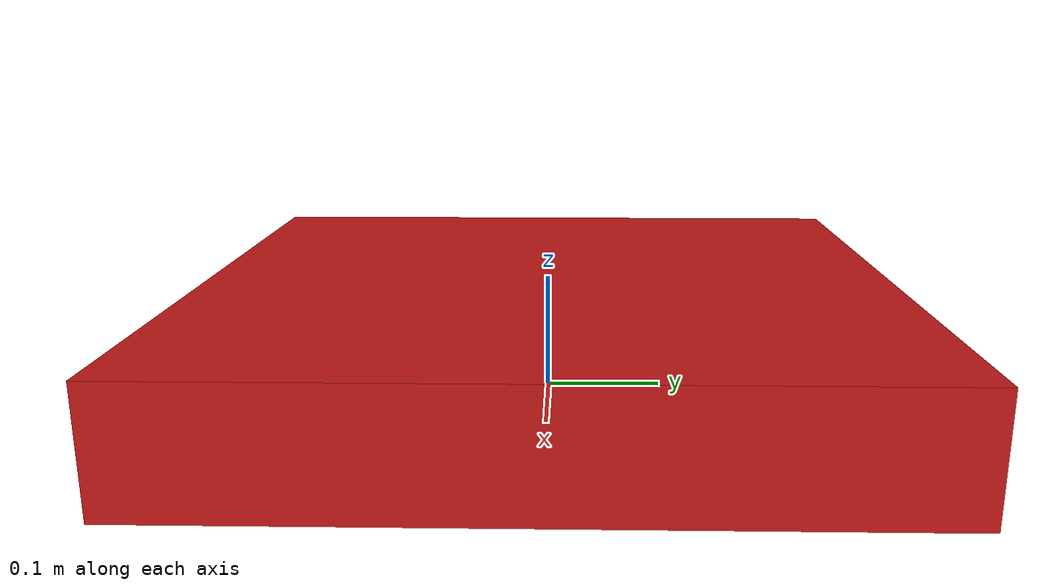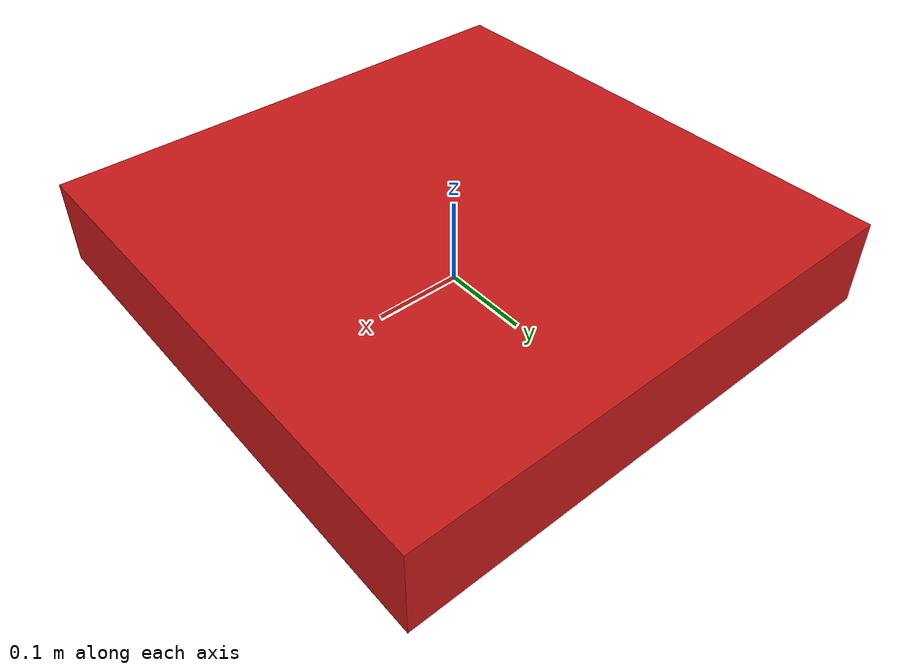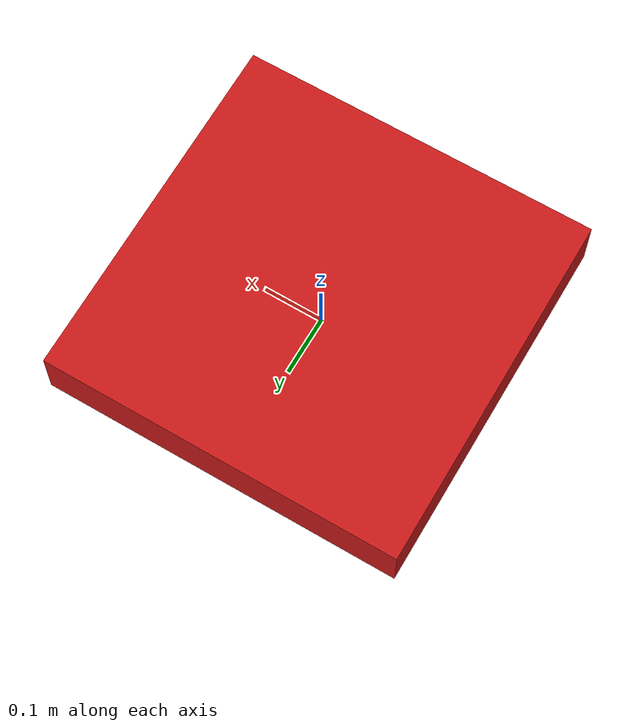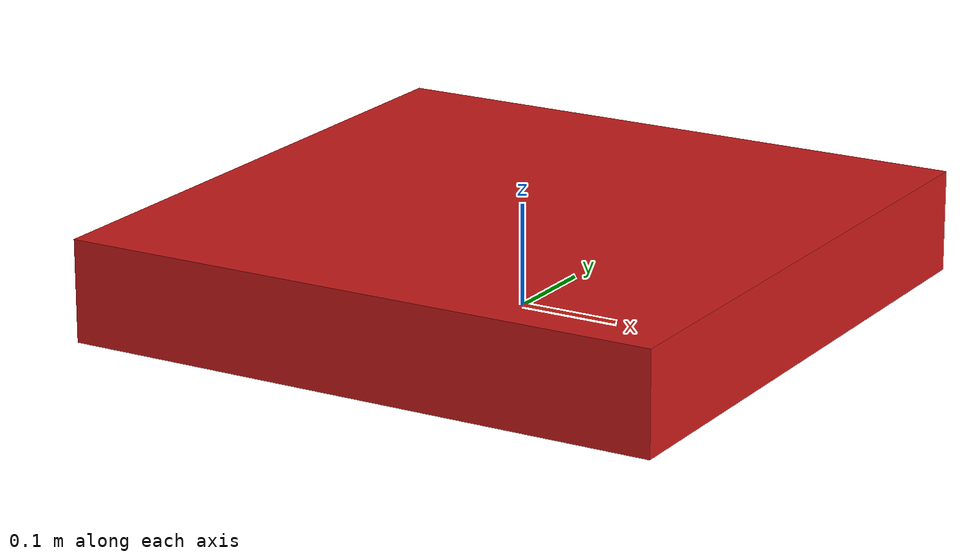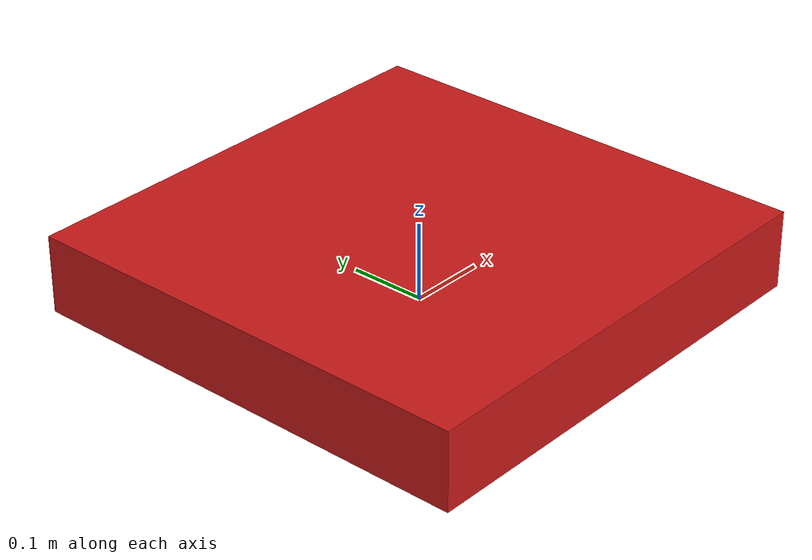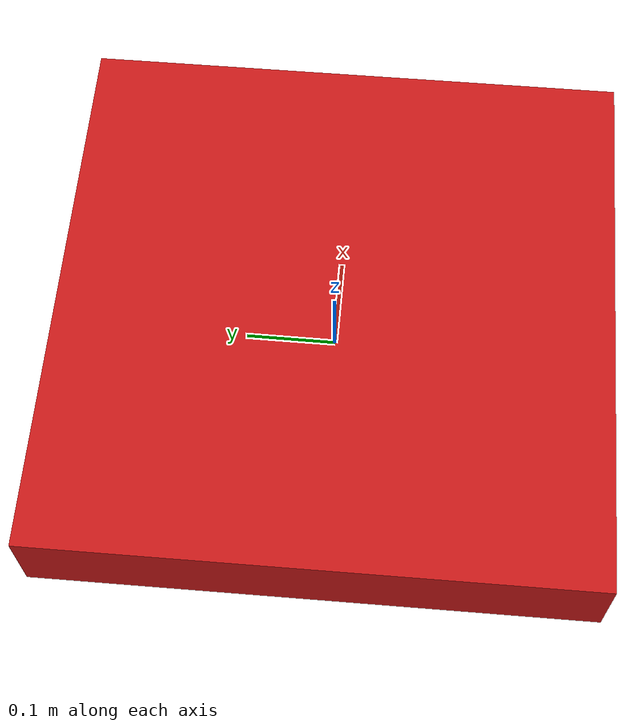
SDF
<?xml version="1.0"?>
<sdf version="1.11">
  <model name="dock">
    <pose>0 0 0.05 0 0 0</pose> <!-- rests on the ground -->
    <static>true</static>

    <link name="base_link">
      <inertial>
        <mass>5.0</mass>
        <inertia>
          <ixx>0.2</ixx><ixy>0.0</ixy><ixz>0.0</ixz>
          <iyy>0.2</iyy><iyz>0.0</iyz>
          <izz>0.2</izz>
        </inertia>
      </inertial>

      <collision name="collision">
        <geometry>
          <box><size>0.6 0.6 0.1</size></box>
        </geometry>
      </collision>

      <visual name="visual">
        <geometry>
          <box><size>0.6 0.6 0.1</size></box>
        </geometry>
        <material>
          <ambient>0.8 0.1 0.1 1</ambient>
          <diffuse>0.8 0.1 0.1 1</diffuse>
        </material>
      </visual>
    </link>
  </model>
</sdf>
